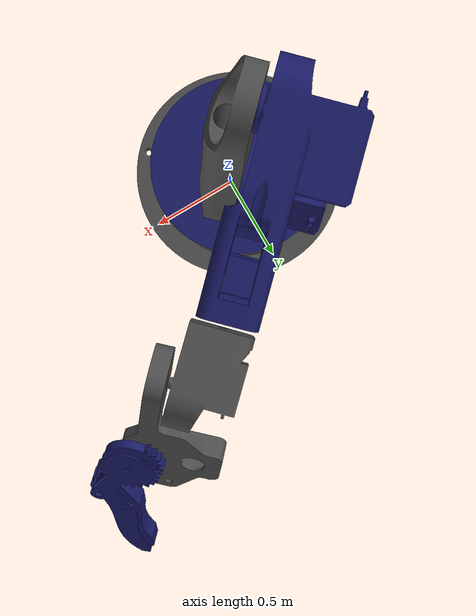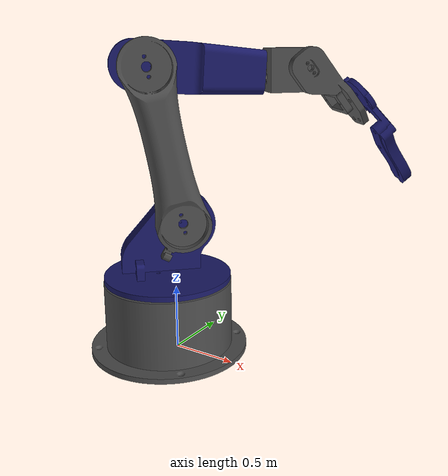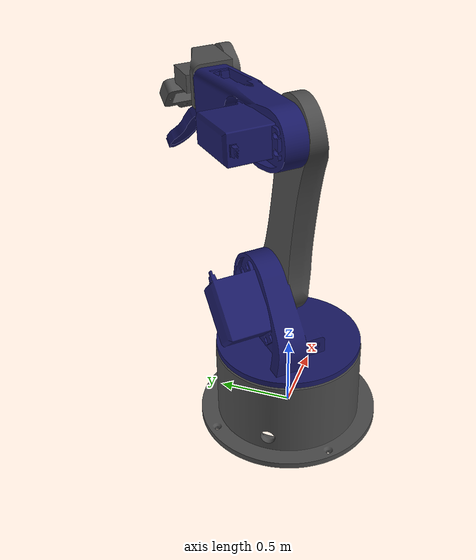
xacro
<?xml version="1.0"?>

<robot xmlns:xacro="http://www.ros.org/wiki/xacro" name="Arm">
    <link name="base_link">
        <visual>
            <origin xyz="0.0 0.0 0.0" rpy="0 0.0 0.0"/>
            <geometry>
                <mesh filename="package://arm/meshes/Base.stl" scale="0.01 0.01 0.01"/>
            </geometry>
            <material name="Grey">
                <color rgba="0.3 0.3 0.3 1.0"/>
            </material>
        </visual>
        <collision>
            <origin xyz="0.0 0.0 0.0" rpy="0.0 0.0 0.0"/>
            <geometry>
                <mesh filename="package://arm/meshes/Base.stl" scale="0.01 0.01 0.01"/>
            </geometry>
        </collision>

    </link>
    <link name="shoulder">
        <visual>
            <origin xyz="0.06 0.015 -0.6" rpy="0 0.0 0.0"/>
            <geometry>
                <mesh filename="package://arm/meshes/Shoulder.stl" scale="0.01 0.01 0.01"/>
            </geometry>
            <material name="Blue">
                <color rgba="0.1 0.1 0.4 1.0"/>
            </material>
        </visual>
        <collision>
            <origin xyz="0.0 0.0 0.0" rpy="0.0 0.0 0.0"/>
            <geometry>
                <mesh filename="package://arm/meshes/Shoulder.stl" scale="0.01 0.01 0.01"/>
            </geometry>
        </collision>
    </link>

    <joint name="Shoulder" type="revolute">
        <origin xyz="-0.06 -0.015 0.6" rpy="0.0 0.0 0.0"/>
        <parent link="base_link"/>
        <child link="shoulder"/>
        <axis xyz="0.0 0.0 1.0"/>
        <limit lower="-1.57" upper="1.57" effort="1.0" velocity="1.0"/>
    </joint>

    <link name="link_1">
        <visual>
            <origin xyz="0.0 -0.1 -0.95" rpy="0.0 0.0 0.77"/>
            <geometry>
                <mesh filename="package://arm/meshes/Link_1.stl" scale="0.01 0.01 0.01"/>
            </geometry>
            <material name="Grey">
                <color rgba="0.3 0.3 0.3 1.0"/>
            </material>
        </visual>
        <collision>
            <origin xyz="0.0 -0.1 -0.95" rpy="0.0 0.0 0.77"/>
            <geometry>
                <mesh filename="package://arm/meshes/Link_1.stl" scale="0.01 0.01 0.01"/>
            </geometry>
        </collision>
    </link>

    <joint name="Link_1" type="revolute">
        <origin xyz="0.1 0.1 0.37" rpy="0.0 0.0 -0.77"/>
        <parent link="shoulder"/>
        <child link="link_1"/>
        <axis xyz="1.0 0.0 0.0"/>
        <limit lower="-1.57" upper="1.57" effort="1.0" velocity="1.0"/>
    </joint>

    <link name="link_2">
        <visual>
            <origin xyz="0.0 0.137 -2.15" rpy="0.0 0.0 0.77"/>
            <geometry>
                <mesh filename="package://arm/meshes/Link_2.stl" scale="0.01 0.01 0.01"/>
            </geometry>
            <material name="Blue">
                <color rgba="0.1 0.1 0.4 1.0"/>
            </material>
        </visual>

        <collision>
            <origin xyz="0.0 0.137 -2.15" rpy="0.0 0.0 0.77"/>
            <geometry>
                <mesh filename="package://arm/meshes/Link_2.stl" scale="0.01 0.01 0.01"/>
            </geometry>
        </collision>
    </link>

    <joint name="link_2" type="revolute">
        <origin xyz="0.0 -0.25 1.2" rpy="0.0 0.0 0.0"/>
        <parent link="link_1"/>
        <child link="link_2"/>
        <axis xyz="1.0 0.0 0.0"/>
        <limit lower="0" upper="3.14" effort="1.0" velocity="1.0"/>
    </joint>

    <link name="link_3">
        <visual>
            <origin xyz="0.59 -0.61 -2" rpy="-0.1 -0.2 0.77"/>
            <geometry>
                <mesh filename="package://arm/meshes/Link_3.stl" scale="0.01 0.01 0.01"/>
            </geometry>
            <material name="Grey">
                <color rgba="0.3 0.3 0.3 1.0"/>
            </material>
        </visual>

        <collision>
            <origin xyz="0.0 0.0 0.0" rpy="0.0 0.0 0.0"/>
            <geometry>
                <mesh filename="package://arm/meshes/Link_3.stl" scale="0.01 0.01 0.01"/>
            </geometry>
        </collision>
    </link>

    <joint name="link_3" type="revolute">
        <origin xyz="-0.15 0.9 -0.1" rpy="0.0 0.0 0.0"/>
        <parent link="link_2"/>
        <child link="link_3"/>
        <axis xyz="0.0 1.0 0.0"/>
        <limit lower="-1.57" upper="1.57" effort="1.0" velocity="1.0"/>
    </joint>

    <link name="gripper_base">
        <visual>
            <origin xyz="1.44 -0.5 -2.505" rpy="-0.2 0.0 3"/>
            <geometry>
                <mesh filename="package://arm/meshes/Gripper_Base.stl" scale="0.01 0.01 0.01"/>
            </geometry>
            <material name="Grey">
                <color rgba="0.3 0.3 0.3 1.0"/>
            </material>
        </visual>

        <collision>
            <origin xyz="0.0 0.0 0.0" rpy="0.0 0.0 0.0"/>
            <geometry>
                <mesh filename="package://arm/meshes/Gripper_Base.stl" scale="0.01 0.01 0.01"/>
            </geometry>
        </collision>
    </link>

    <joint name="gripper_base" type="revolute">
        <origin xyz="0.19 0.3 0.075" rpy="0.0 0.0 -1.57"/>
        <parent link="link_3"/>
        <child link="gripper_base"/>
        <axis xyz="0.0 1.0 0.0"/>
        <limit lower="-0.77" upper="2.34" effort="1.0" velocity="1.0"/>
    </joint>

    <link name="right_finger">
        <visual>
            <origin xyz="-0.2 -0.79 -2.8" rpy="0.0 -0.77 3.14"/>
            <geometry>
                <mesh filename="package://arm/meshes/Right_Finger.stl" scale="0.01 0.01 0.01"/>
            </geometry>
            <material name="">
                <color rgba="0.1 0.1 0.4 1.0"/>
            </material>
        </visual>

        <collision>
            <origin xyz="0.0 0.0 -1.5" rpy="0.0 0.0 3.14"/>
            <geometry>
                <mesh filename="package://arm/meshes/Right_Finger.stl" scale="0.01 0.01 0.01"/>
            </geometry>
        </collision>
    </link>

    <joint name="right" type="revolute">
        <origin xyz="-0.29 0.09 -0.25" rpy="0.0 -0.77 0.0"/>
        <parent link="gripper_base"/>
        <child link="right_finger"/>
        <axis xyz="0.0 0.0 1.0"/>
        <limit lower="-1.00" upper="0" effort="0.0" velocity="0.0"/>
    </joint>

    <link name="left_finger">
        <visual>
            <origin xyz="-0.26 -0.5 -2.8" rpy="0.0 -0.77 3.14"/>
            <geometry>
                <mesh filename="package://arm/meshes/Left_Finger.stl" scale="0.01 0.01 0.01"/>
            </geometry>
            <material name="Blue">
                <color rgba="0.1 0.1 0.4 1.0"/>
            </material>
        </visual>

        <collision>
            <origin xyz="0.0 0.0 0.0" rpy="0.0 0.0 0.0"/>
            <geometry>
                <mesh filename="package://arm/meshes/Left_Finger.stl" scale="0.01 0.01 0.01"/>
            </geometry>
        </collision>
    </link>

    <joint name="left" type="revolute">
        <origin xyz="-0.29 -0.19 -0.25" rpy="0.0 -0.77 0.0"/>
        <parent link="gripper_base"/>
        <child link="left_finger"/>
        <axis xyz="0.0 0.0 1.0"/>
        <mimic joint ="right" multiplier ="-1.0"></mimic>
        <limit lower="0" upper="1" effort="0.0" velocity="0.0"/>
    </joint>

</robot>
